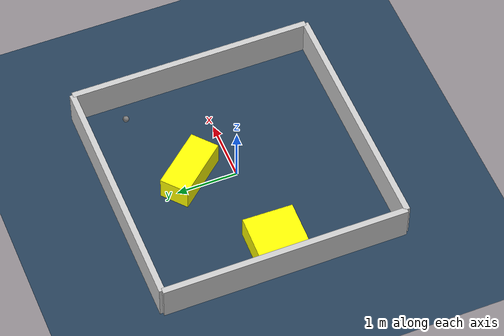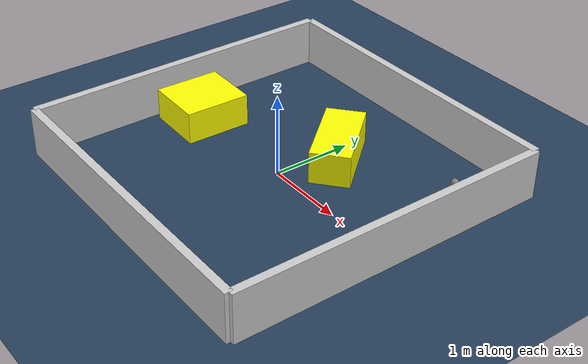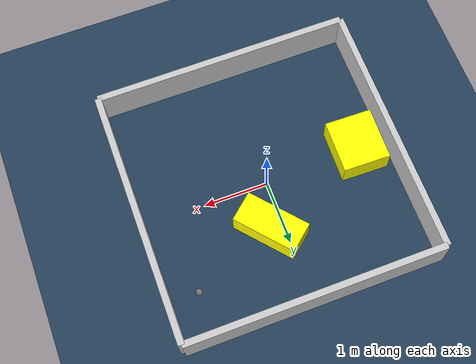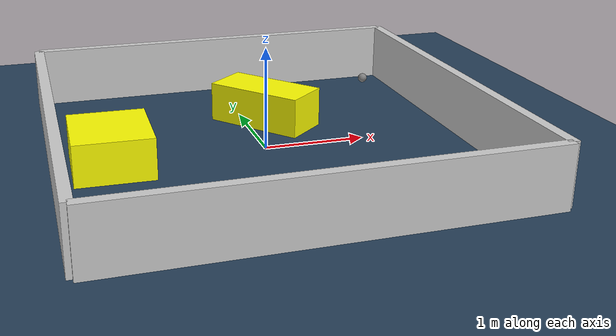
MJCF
<?xml version="1.0" ?>
<mujoco model="generated_environment">
  <option timestep="0.01" integrator="RK4" cone="elliptic"/>
  <default>
    <geom density="1"/>
  </default>
  <asset>
    <texture builtin="gradient" height="3072" rgb1="0.3 0.5 0.7" rgb2="0 0 0" type="skybox" width="512"/>
    <texture builtin="checker" height="300" mark="edge" markrgb="0.8 0.8 0.8" name="groundplane" rgb1="0.2 0.3 0.4" rgb2="0.1 0.2 0.3" type="2d" width="300"/>
    <material name="groundplane" reflectance="0.2" texrepeat="5 5" texture="groundplane" texuniform="true"/>
    <material name="robot" rgba="0.0 1.0 0.0 1"/>
  </asset>
  <worldbody>
    <light dir="0 0 -1" directional="true" pos="0 0 1.5"/>
    <geom condim="4" friction="1.0 0.005 0.001" material="groundplane" name="floor" size="0 0 0.05" type="plane"/>
    <body name="walls">
      <geom name="wall_1" condim="4" pos="-2.0 0.0 0.3" rgba="0.800000011920929 0.800000011920929 0.800000011920929 1.0" size="0.05 2.0 0.3" type="box"/>
      <geom name="wall_2" condim="4" pos="2.0 0.0 0.3" rgba="0.800000011920929 0.800000011920929 0.800000011920929 1.0" size="0.05 2.0 0.3" type="box"/>
      <geom name="wall_3" condim="4" pos="0.0 -2.0 0.3" rgba="0.800000011920929 0.800000011920929 0.800000011920929 1.0" size="2.0 0.05 0.3" type="box"/>
      <geom name="wall_4" condim="4" pos="0.0 2.0 0.3" rgba="0.800000011920929 0.800000011920929 0.800000011920929 1.0" size="2.0 0.05 0.3" type="box"/>
    </body>
    <body name="robot">
      <joint name="joint_x" type="slide" pos="0 0 0" axis="1 0 0"/>
      <joint name="joint_y" type="slide" pos="0 0 0" axis="0 1 0"/>
      <geom name="robot" type="sphere" pos="1.5328906469840295 1.287427854206734 0.2" size="0.05" mass="5." friction="1.0 0.005 0.0001" condim="4"/>
      <site name="sensor_ball"/>
    </body>
    <body name="obstacle_1_movable">
      <geom name="obstacle_1_movable" condim="4" pos="0.20367965035457858 0.7145065988631565 0.2" euler="0 0 40.47905810144861" friction="1.0 0.005 0.001" rgba="1 1 0 1" size="0.24006214099624412 0.5109137242634317 0.2" type="box" mass="0.1"/>
      <joint type="free"/>
    </body>
    <body name="obstacle_2_movable">
      <geom name="obstacle_2_movable" condim="4" pos="-1.490204295135845 -0.04589821748316214 0.2" euler="0 0 358.64616979375904" friction="1.0 0.005 0.001" rgba="1 1 0 1" size="0.36828993509925534 0.41084327520281816 0.2" type="box" mass="0.1"/>
      <joint type="free"/>
    </body>
  </worldbody>
  <actuator>
    <motor name="actuator_x" joint="joint_x" gear="1" ctrlrange="-1 1"/>
    <motor name="actuator_y" joint="joint_y" gear="1" ctrlrange="-1 1"/>
  </actuator>
</mujoco>
